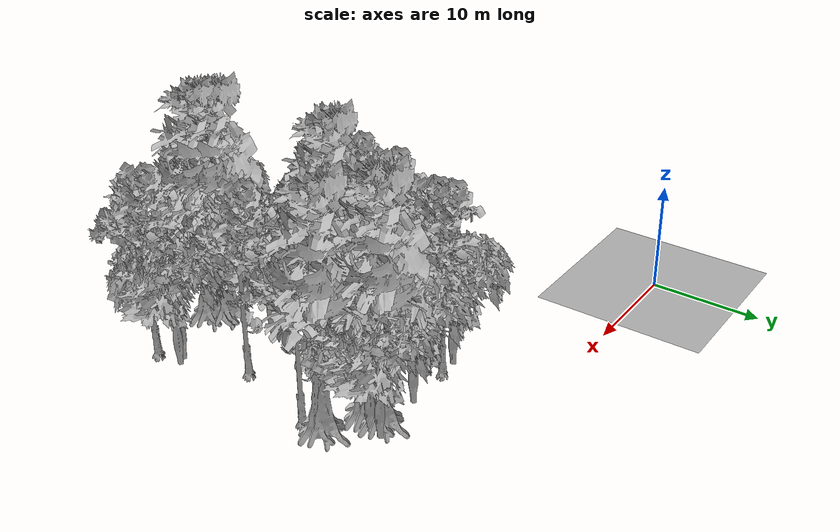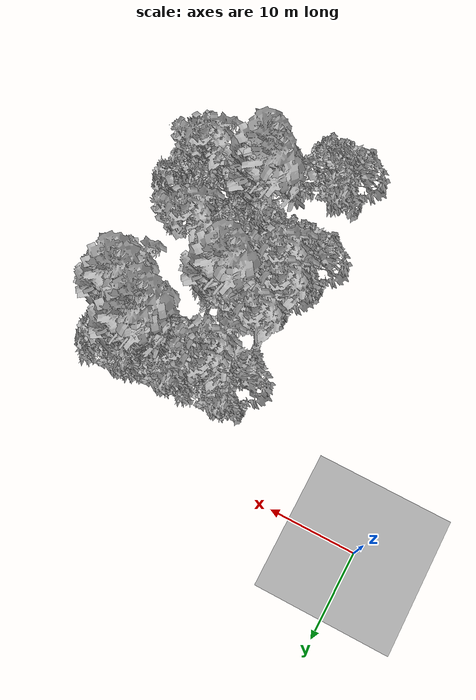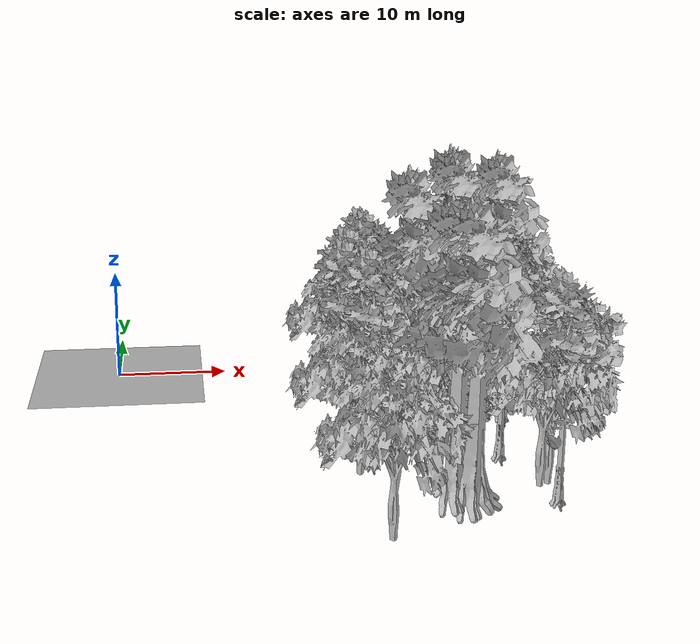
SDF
<sdf version="1.7">
 <world name="default">
  <model name="ground_plane">
   <static>1</static>
   <link name="link">
    <collision name="collision">
     <geometry><plane><normal>0 0 1</normal><size>70 70</size></plane></geometry>
     <surface><contact><ode><min_depth>0.01</min_depth><max_vel>0</max_vel></ode></contact></surface>
    </collision>
    <visual name="grass">
     <cast_shadows>0</cast_shadows>
     <geometry>
      <mesh>
       <scale>0.29000000000000004 0.29000000000000004 0.1</scale>
       <uri>file://grass_plane/meshes/grass_plane.dae</uri>
      </mesh>
     </geometry>
    </visual>
   </link>
  </model>
  <model name="Tree 1">
   <static>1</static>
   <pose>20.451108163864845 -8.503648757612584 0 1.57079 -0 0</pose>
   <link name="link">
    <collision name="collision">
     <geometry><mesh><scale>5 5 5</scale><uri>model://tree_2/meshes/tree_2.obj</uri></mesh></geometry>
    </collision>
    <visual name="visual">
     <geometry><mesh><scale>5 5 5</scale><uri>model://tree_2/meshes/tree_2.obj</uri></mesh></geometry>
    </visual>
   </link>
  </model>
  <model name="Tree 12">
   <static>1</static>
   <pose>33.2929674667695 -29.78137408917678 0 1.57079 -0 0</pose>
   <link name="link">
    <collision name="collision">
     <geometry><mesh><scale>5 5 5</scale><uri>model://tree_9/meshes/tree_9.obj</uri></mesh></geometry>
    </collision>
    <visual name="visual">
     <geometry><mesh><scale>5 5 5</scale><uri>model://tree_9/meshes/tree_9.obj</uri></mesh></geometry>
    </visual>
   </link>
  </model>
  <model name="Tree 20">
   <static>1</static>
   <pose>33.595851866270806 -11.56552290754654 0 1.57079 -0 0</pose>
   <link name="link">
    <collision name="collision">
     <geometry><mesh><scale>5 5 5</scale><uri>model://tree_4/meshes/tree_4.obj</uri></mesh></geometry>
    </collision>
    <visual name="visual">
     <geometry><mesh><scale>5 5 5</scale><uri>model://tree_4/meshes/tree_4.obj</uri></mesh></geometry>
    </visual>
   </link>
  </model>
  <model name="Tree 33">
   <static>1</static>
   <pose>19.23933608193468 -24.01174977535945 0 1.57079 -0 0</pose>
   <link name="link">
    <collision name="collision">
     <geometry><mesh><scale>5 5 5</scale><uri>model://tree_2/meshes/tree_2.obj</uri></mesh></geometry>
    </collision>
    <visual name="visual">
     <geometry><mesh><scale>5 5 5</scale><uri>model://tree_2/meshes/tree_2.obj</uri></mesh></geometry>
    </visual>
   </link>
  </model>
  <model name="Tree 37">
   <static>1</static>
   <pose>25.56122016573233 -23.800671391190313 0 1.57079 -0 0</pose>
   <link name="link">
    <collision name="collision">
     <geometry><mesh><scale>5 5 5</scale><uri>model://tree_2/meshes/tree_2.obj</uri></mesh></geometry>
    </collision>
    <visual name="visual">
     <geometry><mesh><scale>5 5 5</scale><uri>model://tree_2/meshes/tree_2.obj</uri></mesh></geometry>
    </visual>
   </link>
  </model>
  <model name="Tree 59">
   <static>1</static>
   <pose>25.662530111078652 -28.85383218650572 0 1.57079 -0 0</pose>
   <link name="link">
    <collision name="collision">
     <geometry><mesh><scale>5 5 5</scale><uri>model://tree_4/meshes/tree_4.obj</uri></mesh></geometry>
    </collision>
    <visual name="visual">
     <geometry><mesh><scale>5 5 5</scale><uri>model://tree_4/meshes/tree_4.obj</uri></mesh></geometry>
    </visual>
   </link>
  </model>
  <model name="Tree 63">
   <static>1</static>
   <pose>26.51683350646848 -8.159967256172486 0 1.57079 -0 0</pose>
   <link name="link">
    <collision name="collision">
     <geometry><mesh><scale>5 5 5</scale><uri>model://tree_2/meshes/tree_2.obj</uri></mesh></geometry>
    </collision>
    <visual name="visual">
     <geometry><mesh><scale>5 5 5</scale><uri>model://tree_2/meshes/tree_2.obj</uri></mesh></geometry>
    </visual>
   </link>
  </model>
  <model name="Tree 68">
   <static>1</static>
   <pose>24.448112132366667 -19.581654711419773 0 1.57079 -0 0</pose>
   <link name="link">
    <collision name="collision">
     <geometry><mesh><scale>5 5 5</scale><uri>model://tree_2/meshes/tree_2.obj</uri></mesh></geometry>
    </collision>
    <visual name="visual">
     <geometry><mesh><scale>5 5 5</scale><uri>model://tree_2/meshes/tree_2.obj</uri></mesh></geometry>
    </visual>
   </link>
  </model>
  <model name="Tree 95">
   <static>1</static>
   <pose>33.20011092444132 -27.125263224955212 0 1.57079 -0 0</pose>
   <link name="link">
    <collision name="collision">
     <geometry><mesh><scale>5 5 5</scale><uri>model://tree_2/meshes/tree_2.obj</uri></mesh></geometry>
    </collision>
    <visual name="visual">
     <geometry><mesh><scale>5 5 5</scale><uri>model://tree_2/meshes/tree_2.obj</uri></mesh></geometry>
    </visual>
   </link>
  </model>
  <model name="Tree 96">
   <static>1</static>
   <pose>31.30127760158875 -8.774248200683765 0 1.57079 -0 0</pose>
   <link name="link">
    <collision name="collision">
     <geometry><mesh><scale>5 5 5</scale><uri>model://tree_2/meshes/tree_2.obj</uri></mesh></geometry>
    </collision>
    <visual name="visual">
     <geometry><mesh><scale>5 5 5</scale><uri>model://tree_2/meshes/tree_2.obj</uri></mesh></geometry>
    </visual>
   </link>
  </model>
  <model name="Tree 103">
   <static>1</static>
   <pose>26.72912842574862 -29.938862195788 0 1.57079 -0 0</pose>
   <link name="link">
    <collision name="collision">
     <geometry><mesh><scale>5 5 5</scale><uri>model://tree_4/meshes/tree_4.obj</uri></mesh></geometry>
    </collision>
    <visual name="visual">
     <geometry><mesh><scale>5 5 5</scale><uri>model://tree_4/meshes/tree_4.obj</uri></mesh></geometry>
    </visual>
   </link>
  </model>
  <model name="Tree 112">
   <static>1</static>
   <pose>31.078157879346364 -21.549136716885407 0 1.57079 -0 0</pose>
   <link name="link">
    <collision name="collision">
     <geometry><mesh><scale>5 5 5</scale><uri>model://tree_9/meshes/tree_9.obj</uri></mesh></geometry>
    </collision>
    <visual name="visual">
     <geometry><mesh><scale>5 5 5</scale><uri>model://tree_9/meshes/tree_9.obj</uri></mesh></geometry>
    </visual>
   </link>
  </model>
  <model name="Tree 124">
   <static>1</static>
   <pose>20.58564085130193 -22.072714317877207 0 1.57079 -0 0</pose>
   <link name="link">
    <collision name="collision">
     <geometry><mesh><scale>5 5 5</scale><uri>model://tree_9/meshes/tree_9.obj</uri></mesh></geometry>
    </collision>
    <visual name="visual">
     <geometry><mesh><scale>5 5 5</scale><uri>model://tree_9/meshes/tree_9.obj</uri></mesh></geometry>
    </visual>
   </link>
  </model>
  <model name="Tree 128">
   <static>1</static>
   <pose>19.851776112751665 -34.69737341973616 0 1.57079 -0 0</pose>
   <link name="link">
    <collision name="collision">
     <geometry><mesh><scale>5 5 5</scale><uri>model://tree_2/meshes/tree_2.obj</uri></mesh></geometry>
    </collision>
    <visual name="visual">
     <geometry><mesh><scale>5 5 5</scale><uri>model://tree_2/meshes/tree_2.obj</uri></mesh></geometry>
    </visual>
   </link>
  </model>
  <model name="Tree 133">
   <static>1</static>
   <pose>33.499609375728326 -13.75322241440928 0 1.57079 -0 0</pose>
   <link name="link">
    <collision name="collision">
     <geometry><mesh><scale>5 5 5</scale><uri>model://tree_9/meshes/tree_9.obj</uri></mesh></geometry>
    </collision>
    <visual name="visual">
     <geometry><mesh><scale>5 5 5</scale><uri>model://tree_9/meshes/tree_9.obj</uri></mesh></geometry>
    </visual>
   </link>
  </model>
  <model name="Tree 146">
   <static>1</static>
   <pose>22.077829094464988 -8.514475827010681 0 1.57079 -0 0</pose>
   <link name="link">
    <collision name="collision">
     <geometry><mesh><scale>5 5 5</scale><uri>model://tree_9/meshes/tree_9.obj</uri></mesh></geometry>
    </collision>
    <visual name="visual">
     <geometry><mesh><scale>5 5 5</scale><uri>model://tree_9/meshes/tree_9.obj</uri></mesh></geometry>
    </visual>
   </link>
  </model>
  <model name="Tree 149">
   <static>1</static>
   <pose>30.237848633293723 -9.852632199953181 0 1.57079 -0 0</pose>
   <link name="link">
    <collision name="collision">
     <geometry><mesh><scale>5 5 5</scale><uri>model://tree_4/meshes/tree_4.obj</uri></mesh></geometry>
    </collision>
    <visual name="visual">
     <geometry><mesh><scale>5 5 5</scale><uri>model://tree_4/meshes/tree_4.obj</uri></mesh></geometry>
    </visual>
   </link>
  </model>
  <model name="Tree 176">
   <static>1</static>
   <pose>19.136411326131444 -19.551670402844636 0 1.57079 -0 0</pose>
   <link name="link">
    <collision name="collision">
     <geometry><mesh><scale>5 5 5</scale><uri>model://tree_9/meshes/tree_9.obj</uri></mesh></geometry>
    </collision>
    <visual name="visual">
     <geometry><mesh><scale>5 5 5</scale><uri>model://tree_9/meshes/tree_9.obj</uri></mesh></geometry>
    </visual>
   </link>
  </model>
  <model name="Tree 186">
   <static>1</static>
   <pose>24.82801697776914 -17.614266259318896 0 1.57079 -0 0</pose>
   <link name="link">
    <collision name="collision">
     <geometry><mesh><scale>5 5 5</scale><uri>model://tree_4/meshes/tree_4.obj</uri></mesh></geometry>
    </collision>
    <visual name="visual">
     <geometry><mesh><scale>5 5 5</scale><uri>model://tree_4/meshes/tree_4.obj</uri></mesh></geometry>
    </visual>
   </link>
  </model>
  <model name="Tree 190">
   <static>1</static>
   <pose>30.284233392772123 -8.426846043642755 0 1.57079 -0 0</pose>
   <link name="link">
    <collision name="collision">
     <geometry><mesh><scale>5 5 5</scale><uri>model://tree_4/meshes/tree_4.obj</uri></mesh></geometry>
    </collision>
    <visual name="visual">
     <geometry><mesh><scale>5 5 5</scale><uri>model://tree_4/meshes/tree_4.obj</uri></mesh></geometry>
    </visual>
   </link>
  </model>
  <model name="Tree 200">
   <static>1</static>
   <pose>19.85624543207075 -15.389819655036309 0 1.57079 -0 0</pose>
   <link name="link">
    <collision name="collision">
     <geometry><mesh><scale>5 5 5</scale><uri>model://tree_9/meshes/tree_9.obj</uri></mesh></geometry>
    </collision>
    <visual name="visual">
     <geometry><mesh><scale>5 5 5</scale><uri>model://tree_9/meshes/tree_9.obj</uri></mesh></geometry>
    </visual>
   </link>
  </model>
  <model name="Tree 211">
   <static>1</static>
   <pose>31.450069057616062 -7.706086502439788 0 1.57079 -0 0</pose>
   <link name="link">
    <collision name="collision">
     <geometry><mesh><scale>5 5 5</scale><uri>model://tree_2/meshes/tree_2.obj</uri></mesh></geometry>
    </collision>
    <visual name="visual">
     <geometry><mesh><scale>5 5 5</scale><uri>model://tree_2/meshes/tree_2.obj</uri></mesh></geometry>
    </visual>
   </link>
  </model>
  <model name="Tree 213">
   <static>1</static>
   <pose>22.347481567860605 -9.96008302865355 0 1.57079 -0 0</pose>
   <link name="link">
    <collision name="collision">
     <geometry><mesh><scale>5 5 5</scale><uri>model://tree_9/meshes/tree_9.obj</uri></mesh></geometry>
    </collision>
    <visual name="visual">
     <geometry><mesh><scale>5 5 5</scale><uri>model://tree_9/meshes/tree_9.obj</uri></mesh></geometry>
    </visual>
   </link>
  </model>
  <model name="Tree 229">
   <static>1</static>
   <pose>32.477132608033784 -27.46290088658469 0 1.57079 -0 0</pose>
   <link name="link">
    <collision name="collision">
     <geometry><mesh><scale>5 5 5</scale><uri>model://tree_2/meshes/tree_2.obj</uri></mesh></geometry>
    </collision>
    <visual name="visual">
     <geometry><mesh><scale>5 5 5</scale><uri>model://tree_2/meshes/tree_2.obj</uri></mesh></geometry>
    </visual>
   </link>
  </model>
  <model name="Tree 241">
   <static>1</static>
   <pose>21.226810050226163 -19.591657742326525 0 1.57079 -0 0</pose>
   <link name="link">
    <collision name="collision">
     <geometry><mesh><scale>5 5 5</scale><uri>model://tree_2/meshes/tree_2.obj</uri></mesh></geometry>
    </collision>
    <visual name="visual">
     <geometry><mesh><scale>5 5 5</scale><uri>model://tree_2/meshes/tree_2.obj</uri></mesh></geometry>
    </visual>
   </link>
  </model>
  <model name="Bush 25">
   <static>1</static>
   <pose>27.307146254122515 -11.198737571687772 0 1.57079 -0 0</pose>
   <link name="link">
    <collision name="collision">
     <geometry><mesh><scale>2 2 2</scale><uri>model://bush_2/meshes/bush_2.obj</uri></mesh></geometry>
    </collision>
    <visual name="visual">
     <geometry><mesh><scale>5 5 5</scale><uri>model://bush_2/meshes/bush_2.obj</uri></mesh></geometry>
    </visual>
   </link>
  </model>
 </world>
</sdf>
